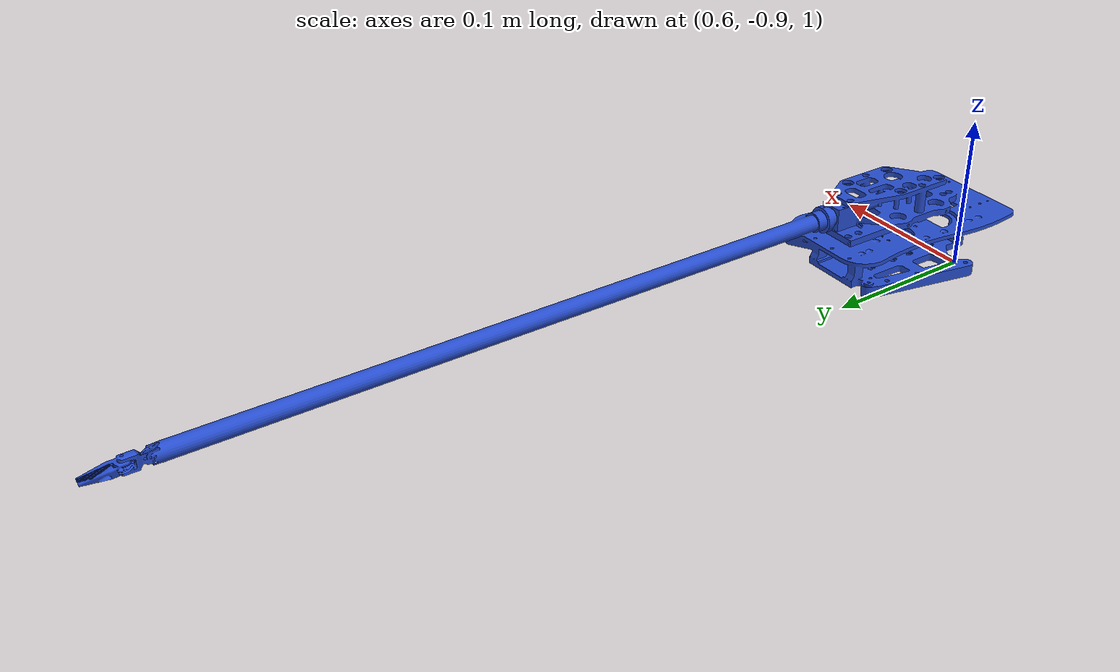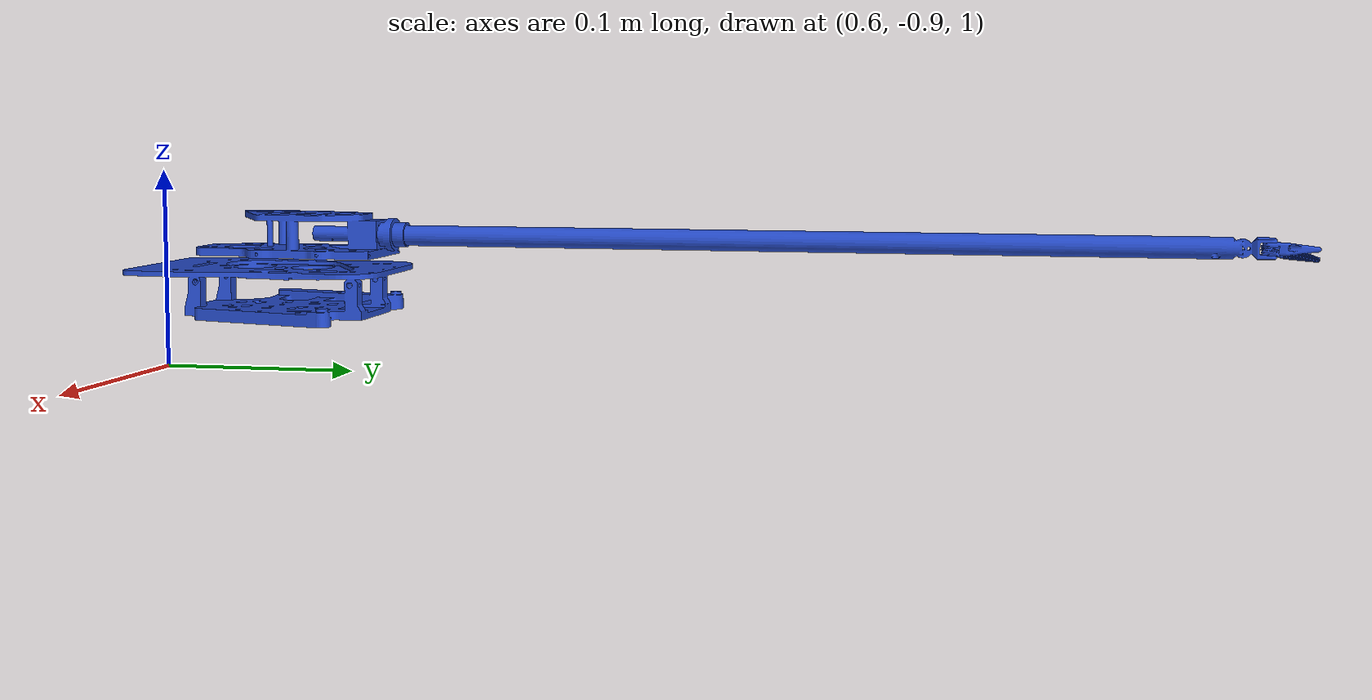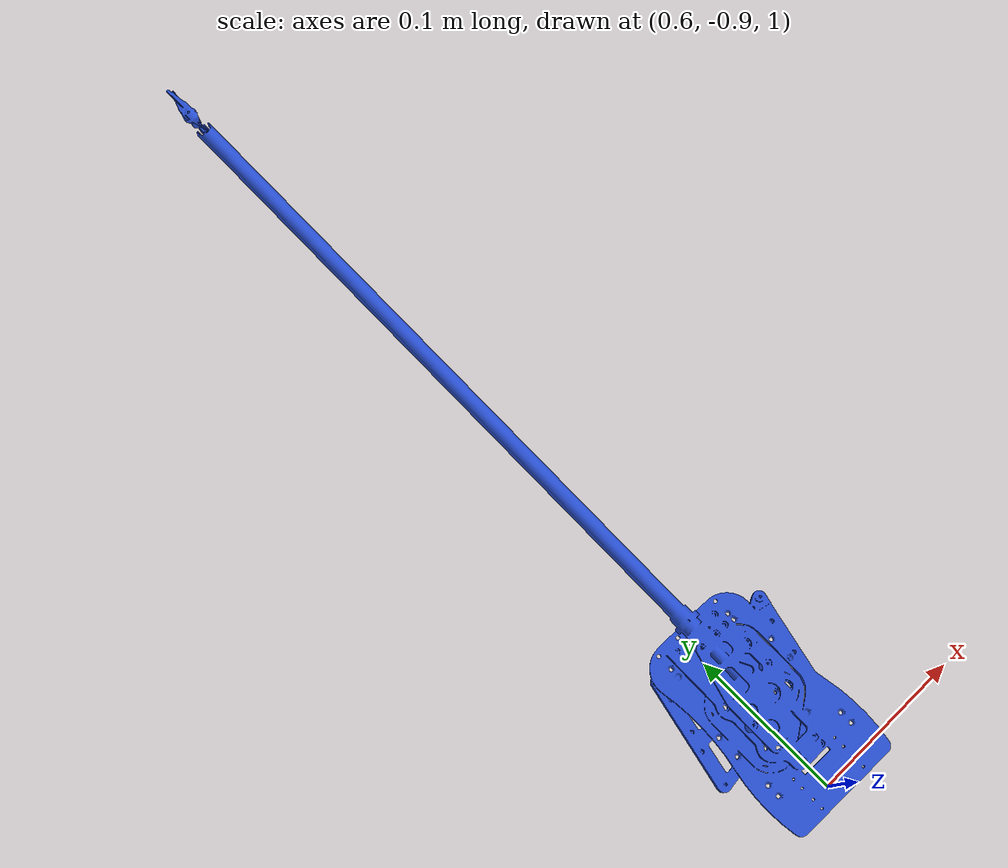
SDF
<?xml version='1.0'?>
<sdf version='1.6'>
  <model name='surgical_tool'>
      <pose frame=''>0.6 -0.8 1.0493 0 0 3.14</pose>
      <link name='surgical_tool_link'>
        <inertial>
          <mass>0.2</mass>
          <pose>-0.001094 -0.144793 0.020361 0 0 0</pose>
          <inertia>
            <ixx>0.00001</ixx>
            <ixy>0</ixy>
            <ixz>0</ixz>
            <iyy>0</iyy>
            <iyz>0</iyz>
            <izz>0.00001</izz>
          </inertia>
        </inertial>
        <collision name='collision'>
          <geometry>
            <mesh>
              <uri>model://kuka_barrett_gazebo/objects/surgical_tool/meshes/surgical_tool_collision.stl</uri>
            </mesh>
          </geometry>
          <max_contacts>10</max_contacts>
          <surface>
            <contact>
              <ode/>
            </contact>
            <bounce/>
            <friction>
              <torsional>
                <ode/>
              </torsional>
              <ode/>
            </friction>
          </surface>
        </collision>
        <visual name='visual'>
          <geometry>
            <mesh>
              <uri>model://kuka_barrett_gazebo/objects/surgical_tool/meshes/surgical_tool.stl</uri>
            </mesh>
          </geometry>
          <material>
            <script>
              <name>Gazebo/Blue</name>
              <uri>file://media/materials/scripts/gazebo.material</uri>
            </script>
          </material>
        </visual>
        <self_collide>0</self_collide>
        <enable_wind>0</enable_wind>
        <kinematic>0</kinematic>
      </link>
    </model>
</sdf>
